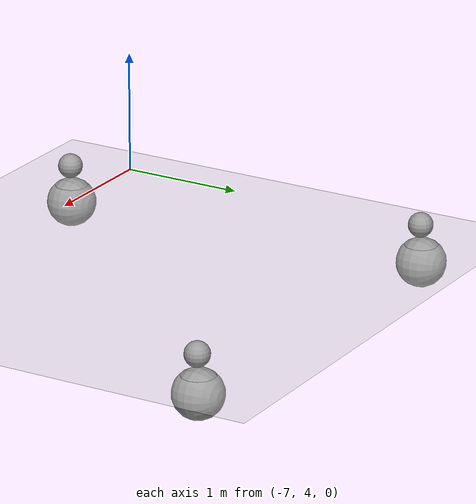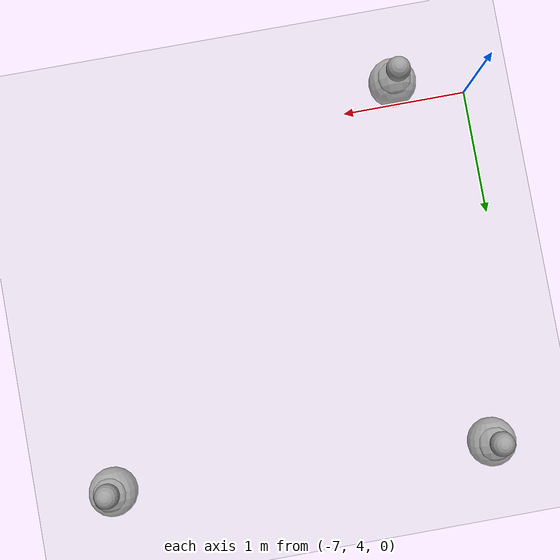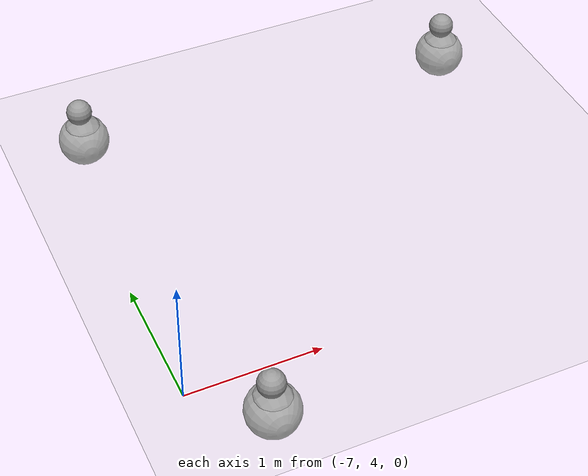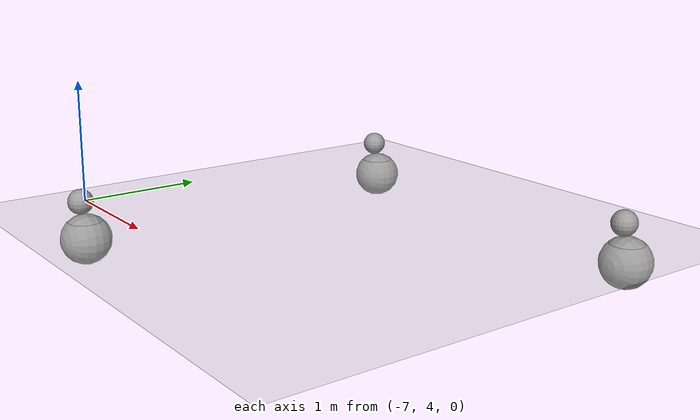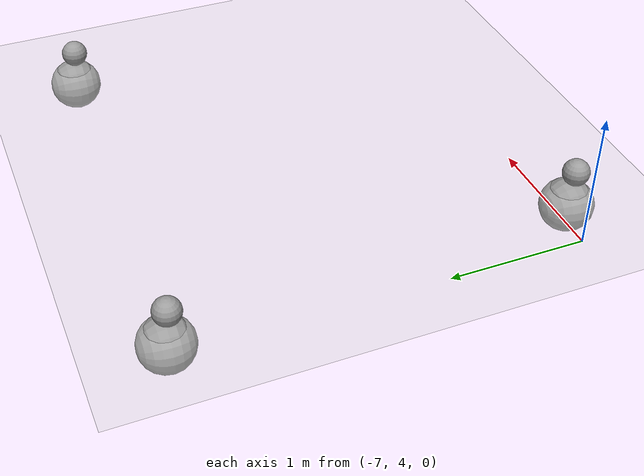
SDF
<sdf version="1.7">
 <world name="default">
  <model name="ground_plane">
   <static>1</static>
   <link name="link">
    <collision name="collision">
     <geometry><plane><normal>0 0 1</normal><size>100 100</size></plane></geometry>
     <surface>
      <contact><collide_bitmask>65535</collide_bitmask></contact>
      <friction><ode><mu>100</mu><mu2>50</mu2></ode></friction>
     </surface>
    </collision>
    <visual name="visual">
     <cast_shadows>0</cast_shadows>
     <geometry><plane><normal>0 0 1</normal><size>100 100</size></plane></geometry>
     <material>
      <script><uri>file://media/materials/scripts/gazebo.material</uri><name>Gazebo/Grey</name></script>
     </material>
    </visual>
   </link>
  </model>
  <model name="HumanoidRobot_0">
   <link name="link_1">
    <inertial>
     <mass>1</mass>
     <inertia><ixx>0.1</ixx><ixy>0</ixy><ixz>0</ixz><iyy>0.1</iyy><iyz>0</iyz><izz>0.1</izz></inertia>
    </inertial>
    <pose>0.01 0.01 -0.15 1.5707 -0 0</pose>
    <visual name="visual">
     <geometry><sphere><radius>0.2</radius></sphere></geometry>
     <material>
      <lighting>1</lighting>
      <script><uri>file://media/materials/scripts/gazebo.material</uri><name>Gazebo/Grey</name></script>
      <shader type="pixel"><normal_map>__default__</normal_map></shader>
      <ambient>0.3 0.3 0.3 1</ambient>
      <diffuse>0.7 0.7 0.7 1</diffuse>
      <specular>0.01 0.01 0.01 1</specular>
      <emissive>0 0 0 1</emissive>
     </material>
    </visual>
    <collision name="collision">
     <geometry><sphere><radius>0.2</radius></sphere></geometry>
     <surface>
      <friction>
       <ode><mu>1</mu><mu2>1</mu2><fdir1>0 0 0</fdir1><slip1>0</slip1><slip2>0</slip2></ode>
       <torsional>
        <coefficient>1</coefficient>
        <patch_radius>0</patch_radius>
        <surface_radius>0</surface_radius>
        <use_patch_radius>1</use_patch_radius>
        <ode><slip>0</slip></ode>
       </torsional>
      </friction>
      <bounce><restitution_coefficient>0</restitution_coefficient><threshold>1e+06</threshold></bounce>
      <contact>
       <collide_without_contact>0</collide_without_contact>
       <collide_without_contact_bitmask>1</collide_without_contact_bitmask>
       <collide_bitmask>1</collide_bitmask>
       <ode>
        <soft_cfm>0</soft_cfm>
        <soft_erp>0.2</soft_erp>
        <kp>1e+13</kp>
        <kd>1</kd>
        <max_vel>0.01</max_vel>
        <min_depth>0</min_depth>
       </ode>
       <bullet>
        <split_impulse>1</split_impulse>
        <split_impulse_penetration_threshold>-0.01</split_impulse_penetration_threshold>
        <soft_cfm>0</soft_cfm>
        <soft_erp>0.2</soft_erp>
        <kp>1e+13</kp>
        <kd>1</kd>
       </bullet>
      </contact>
     </surface>
    </collision>
   </link>
   <link name="link_3">
    <inertial>
     <mass>1</mass>
     <inertia><ixx>0.1</ixx><ixy>0</ixy><ixz>0</ixz><iyy>0.1</iyy><iyz>0</iyz><izz>0.1</izz></inertia>
    </inertial>
    <pose>-0.01 -0.01 0.15 0 -0 0</pose>
    <visual name="visual">
     <geometry><sphere><radius>0.1</radius></sphere></geometry>
     <material>
      <lighting>1</lighting>
      <script><uri>file://media/materials/scripts/gazebo.material</uri><name>Gazebo/Grey</name></script>
      <shader type="pixel"><normal_map>__default__</normal_map></shader>
      <ambient>0.3 0.3 0.3 1</ambient>
      <diffuse>0.7 0.7 0.7 1</diffuse>
      <specular>0.01 0.01 0.01 1</specular>
      <emissive>0 0 0 1</emissive>
     </material>
    </visual>
    <collision name="collision">
     <geometry><sphere><radius>0.1</radius></sphere></geometry>
     <surface>
      <friction>
       <ode><mu>1</mu><mu2>1</mu2><fdir1>0 0 0</fdir1><slip1>0</slip1><slip2>0</slip2></ode>
       <torsional>
        <coefficient>1</coefficient>
        <patch_radius>0</patch_radius>
        <surface_radius>0</surface_radius>
        <use_patch_radius>1</use_patch_radius>
        <ode><slip>0</slip></ode>
       </torsional>
      </friction>
      <bounce><restitution_coefficient>0</restitution_coefficient><threshold>1e+06</threshold></bounce>
      <contact>
       <collide_without_contact>0</collide_without_contact>
       <collide_without_contact_bitmask>1</collide_without_contact_bitmask>
       <collide_bitmask>1</collide_bitmask>
       <ode>
        <soft_cfm>0</soft_cfm>
        <soft_erp>0.2</soft_erp>
        <kp>1e+13</kp>
        <kd>1</kd>
        <max_vel>0.01</max_vel>
        <min_depth>0</min_depth>
       </ode>
       <bullet>
        <split_impulse>1</split_impulse>
        <split_impulse_penetration_threshold>-0.01</split_impulse_penetration_threshold>
        <soft_cfm>0</soft_cfm>
        <soft_erp>0.2</soft_erp>
        <kp>1e+13</kp>
        <kd>1</kd>
       </bullet>
      </contact>
     </surface>
    </collision>
   </link>
   <joint name="link_1_JOINT_0" type="revolute">
    <parent>link_1</parent>
    <child>link_3</child>
    <axis>
     <xyz>0 1 0</xyz>
     <limit>
      <lower>-1.79769e+308</lower>
      <upper>1.79769e+308</upper>
      <effort>-1</effort>
      <velocity>-1</velocity>
     </limit>
     <dynamics>
      <spring_reference>0</spring_reference>
      <spring_stiffness>0</spring_stiffness>
      <damping>0</damping>
     </dynamics>
    </axis>
    <physics>
     <ode><limit><cfm>0</cfm><erp>0.2</erp></limit><suspension><cfm>0</cfm><erp>0.2</erp></suspension></ode>
    </physics>
   </joint>
   <static>0</static>
   <pose>-6.47415 3.76064 0 0 -0 0</pose>
  </model>
  <model name="HumanoidRobot_5">
   <link name="link_1">
    <inertial>
     <mass>1</mass>
     <inertia><ixx>0.1</ixx><ixy>0</ixy><ixz>0</ixz><iyy>0.1</iyy><iyz>0</iyz><izz>0.1</izz></inertia>
    </inertial>
    <pose>0.01 0.01 -0.15 1.5707 -0 0</pose>
    <visual name="visual">
     <geometry><sphere><radius>0.2</radius></sphere></geometry>
     <material>
      <lighting>1</lighting>
      <script><uri>file://media/materials/scripts/gazebo.material</uri><name>Gazebo/Grey</name></script>
      <shader type="pixel"><normal_map>__default__</normal_map></shader>
      <ambient>0.3 0.3 0.3 1</ambient>
      <diffuse>0.7 0.7 0.7 1</diffuse>
      <specular>0.01 0.01 0.01 1</specular>
      <emissive>0 0 0 1</emissive>
     </material>
    </visual>
    <collision name="collision">
     <geometry><sphere><radius>0.2</radius></sphere></geometry>
     <surface>
      <friction>
       <ode><mu>1</mu><mu2>1</mu2><fdir1>0 0 0</fdir1><slip1>0</slip1><slip2>0</slip2></ode>
       <torsional>
        <coefficient>1</coefficient>
        <patch_radius>0</patch_radius>
        <surface_radius>0</surface_radius>
        <use_patch_radius>1</use_patch_radius>
        <ode><slip>0</slip></ode>
       </torsional>
      </friction>
      <bounce><restitution_coefficient>0</restitution_coefficient><threshold>1e+06</threshold></bounce>
      <contact>
       <collide_without_contact>0</collide_without_contact>
       <collide_without_contact_bitmask>1</collide_without_contact_bitmask>
       <collide_bitmask>1</collide_bitmask>
       <ode>
        <soft_cfm>0</soft_cfm>
        <soft_erp>0.2</soft_erp>
        <kp>1e+13</kp>
        <kd>1</kd>
        <max_vel>0.01</max_vel>
        <min_depth>0</min_depth>
       </ode>
       <bullet>
        <split_impulse>1</split_impulse>
        <split_impulse_penetration_threshold>-0.01</split_impulse_penetration_threshold>
        <soft_cfm>0</soft_cfm>
        <soft_erp>0.2</soft_erp>
        <kp>1e+13</kp>
        <kd>1</kd>
       </bullet>
      </contact>
     </surface>
    </collision>
   </link>
   <link name="link_3">
    <inertial>
     <mass>1</mass>
     <inertia><ixx>0.1</ixx><ixy>0</ixy><ixz>0</ixz><iyy>0.1</iyy><iyz>0</iyz><izz>0.1</izz></inertia>
    </inertial>
    <pose>-0.01 -0.01 0.15 0 -0 0</pose>
    <visual name="visual">
     <geometry><sphere><radius>0.1</radius></sphere></geometry>
     <material>
      <lighting>1</lighting>
      <script><uri>file://media/materials/scripts/gazebo.material</uri><name>Gazebo/Grey</name></script>
      <shader type="pixel"><normal_map>__default__</normal_map></shader>
      <ambient>0.3 0.3 0.3 1</ambient>
      <diffuse>0.7 0.7 0.7 1</diffuse>
      <specular>0.01 0.01 0.01 1</specular>
      <emissive>0 0 0 1</emissive>
     </material>
    </visual>
    <collision name="collision">
     <geometry><sphere><radius>0.1</radius></sphere></geometry>
     <surface>
      <friction>
       <ode><mu>1</mu><mu2>1</mu2><fdir1>0 0 0</fdir1><slip1>0</slip1><slip2>0</slip2></ode>
       <torsional>
        <coefficient>1</coefficient>
        <patch_radius>0</patch_radius>
        <surface_radius>0</surface_radius>
        <use_patch_radius>1</use_patch_radius>
        <ode><slip>0</slip></ode>
       </torsional>
      </friction>
      <bounce><restitution_coefficient>0</restitution_coefficient><threshold>1e+06</threshold></bounce>
      <contact>
       <collide_without_contact>0</collide_without_contact>
       <collide_without_contact_bitmask>1</collide_without_contact_bitmask>
       <collide_bitmask>1</collide_bitmask>
       <ode>
        <soft_cfm>0</soft_cfm>
        <soft_erp>0.2</soft_erp>
        <kp>1e+13</kp>
        <kd>1</kd>
        <max_vel>0.01</max_vel>
        <min_depth>0</min_depth>
       </ode>
       <bullet>
        <split_impulse>1</split_impulse>
        <split_impulse_penetration_threshold>-0.01</split_impulse_penetration_threshold>
        <soft_cfm>0</soft_cfm>
        <soft_erp>0.2</soft_erp>
        <kp>1e+13</kp>
        <kd>1</kd>
       </bullet>
      </contact>
     </surface>
    </collision>
   </link>
   <joint name="link_1_JOINT_0" type="revolute">
    <parent>link_1</parent>
    <child>link_3</child>
    <axis>
     <xyz>0 1 0</xyz>
     <limit>
      <lower>-1.79769e+308</lower>
      <upper>1.79769e+308</upper>
      <effort>-1</effort>
      <velocity>-1</velocity>
     </limit>
     <dynamics>
      <spring_reference>0</spring_reference>
      <spring_stiffness>0</spring_stiffness>
      <damping>0</damping>
     </dynamics>
    </axis>
    <physics>
     <ode><limit><cfm>0</cfm><erp>0.2</erp></limit><suspension><cfm>0</cfm><erp>0.2</erp></suspension></ode>
    </physics>
   </joint>
   <static>0</static>
   <pose>-6.73576 6.85099 0 0 -0 0</pose>
  </model>
  <model name="HumanoidRobot_6">
   <link name="link_1">
    <inertial>
     <mass>1</mass>
     <inertia><ixx>0.1</ixx><ixy>0</ixy><ixz>0</ixz><iyy>0.1</iyy><iyz>0</iyz><izz>0.1</izz></inertia>
    </inertial>
    <pose>0.01 0.01 -0.15 1.5707 -0 0</pose>
    <visual name="visual">
     <geometry><sphere><radius>0.2</radius></sphere></geometry>
     <material>
      <lighting>1</lighting>
      <script><uri>file://media/materials/scripts/gazebo.material</uri><name>Gazebo/Grey</name></script>
      <shader type="pixel"><normal_map>__default__</normal_map></shader>
      <ambient>0.3 0.3 0.3 1</ambient>
      <diffuse>0.7 0.7 0.7 1</diffuse>
      <specular>0.01 0.01 0.01 1</specular>
      <emissive>0 0 0 1</emissive>
     </material>
    </visual>
    <collision name="collision">
     <geometry><sphere><radius>0.2</radius></sphere></geometry>
     <surface>
      <friction>
       <ode><mu>1</mu><mu2>1</mu2><fdir1>0 0 0</fdir1><slip1>0</slip1><slip2>0</slip2></ode>
       <torsional>
        <coefficient>1</coefficient>
        <patch_radius>0</patch_radius>
        <surface_radius>0</surface_radius>
        <use_patch_radius>1</use_patch_radius>
        <ode><slip>0</slip></ode>
       </torsional>
      </friction>
      <bounce><restitution_coefficient>0</restitution_coefficient><threshold>1e+06</threshold></bounce>
      <contact>
       <collide_without_contact>0</collide_without_contact>
       <collide_without_contact_bitmask>1</collide_without_contact_bitmask>
       <collide_bitmask>1</collide_bitmask>
       <ode>
        <soft_cfm>0</soft_cfm>
        <soft_erp>0.2</soft_erp>
        <kp>1e+13</kp>
        <kd>1</kd>
        <max_vel>0.01</max_vel>
        <min_depth>0</min_depth>
       </ode>
       <bullet>
        <split_impulse>1</split_impulse>
        <split_impulse_penetration_threshold>-0.01</split_impulse_penetration_threshold>
        <soft_cfm>0</soft_cfm>
        <soft_erp>0.2</soft_erp>
        <kp>1e+13</kp>
        <kd>1</kd>
       </bullet>
      </contact>
     </surface>
    </collision>
   </link>
   <link name="link_3">
    <inertial>
     <mass>1</mass>
     <inertia><ixx>0.1</ixx><ixy>0</ixy><ixz>0</ixz><iyy>0.1</iyy><iyz>0</iyz><izz>0.1</izz></inertia>
    </inertial>
    <pose>-0.01 -0.01 0.15 0 -0 0</pose>
    <visual name="visual">
     <geometry><sphere><radius>0.1</radius></sphere></geometry>
     <material>
      <lighting>1</lighting>
      <script><uri>file://media/materials/scripts/gazebo.material</uri><name>Gazebo/Grey</name></script>
      <shader type="pixel"><normal_map>__default__</normal_map></shader>
      <ambient>0.3 0.3 0.3 1</ambient>
      <diffuse>0.7 0.7 0.7 1</diffuse>
      <specular>0.01 0.01 0.01 1</specular>
      <emissive>0 0 0 1</emissive>
     </material>
    </visual>
    <collision name="collision">
     <geometry><sphere><radius>0.1</radius></sphere></geometry>
     <surface>
      <friction>
       <ode><mu>1</mu><mu2>1</mu2><fdir1>0 0 0</fdir1><slip1>0</slip1><slip2>0</slip2></ode>
       <torsional>
        <coefficient>1</coefficient>
        <patch_radius>0</patch_radius>
        <surface_radius>0</surface_radius>
        <use_patch_radius>1</use_patch_radius>
        <ode><slip>0</slip></ode>
       </torsional>
      </friction>
      <bounce><restitution_coefficient>0</restitution_coefficient><threshold>1e+06</threshold></bounce>
      <contact>
       <collide_without_contact>0</collide_without_contact>
       <collide_without_contact_bitmask>1</collide_without_contact_bitmask>
       <collide_bitmask>1</collide_bitmask>
       <ode>
        <soft_cfm>0</soft_cfm>
        <soft_erp>0.2</soft_erp>
        <kp>1e+13</kp>
        <kd>1</kd>
        <max_vel>0.01</max_vel>
        <min_depth>0</min_depth>
       </ode>
       <bullet>
        <split_impulse>1</split_impulse>
        <split_impulse_penetration_threshold>-0.01</split_impulse_penetration_threshold>
        <soft_cfm>0</soft_cfm>
        <soft_erp>0.2</soft_erp>
        <kp>1e+13</kp>
        <kd>1</kd>
       </bullet>
      </contact>
     </surface>
    </collision>
   </link>
   <joint name="link_1_JOINT_0" type="revolute">
    <parent>link_1</parent>
    <child>link_3</child>
    <axis>
     <xyz>0 1 0</xyz>
     <limit>
      <lower>-1.79769e+308</lower>
      <upper>1.79769e+308</upper>
      <effort>-1</effort>
      <velocity>-1</velocity>
     </limit>
     <dynamics>
      <spring_reference>0</spring_reference>
      <spring_stiffness>0</spring_stiffness>
      <damping>0</damping>
     </dynamics>
    </axis>
    <physics>
     <ode><limit><cfm>0</cfm><erp>0.2</erp></limit><suspension><cfm>0</cfm><erp>0.2</erp></suspension></ode>
    </physics>
   </joint>
   <static>0</static>
   <pose>-3.59957 6.70417 0 0 -0 0</pose>
  </model>
 </world>
</sdf>
